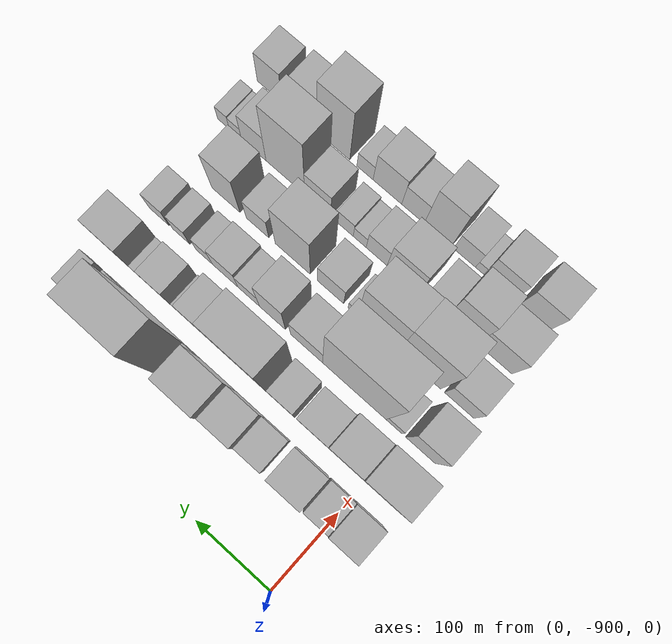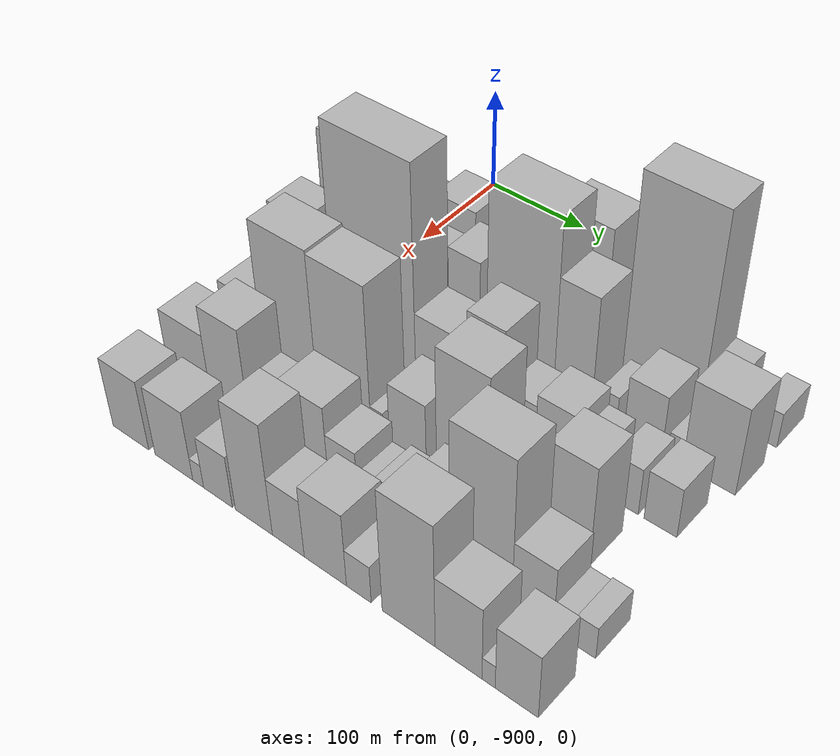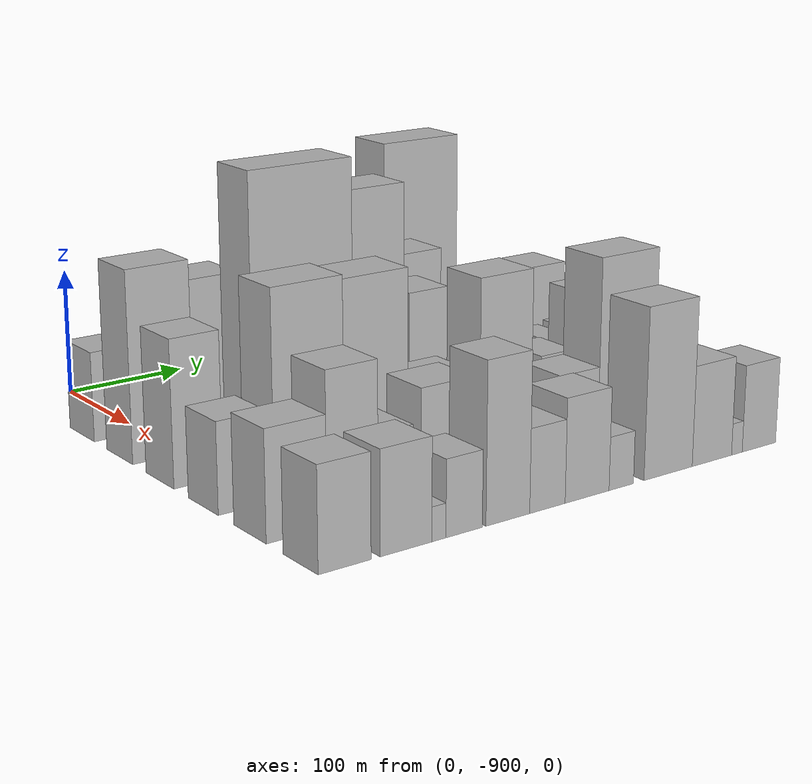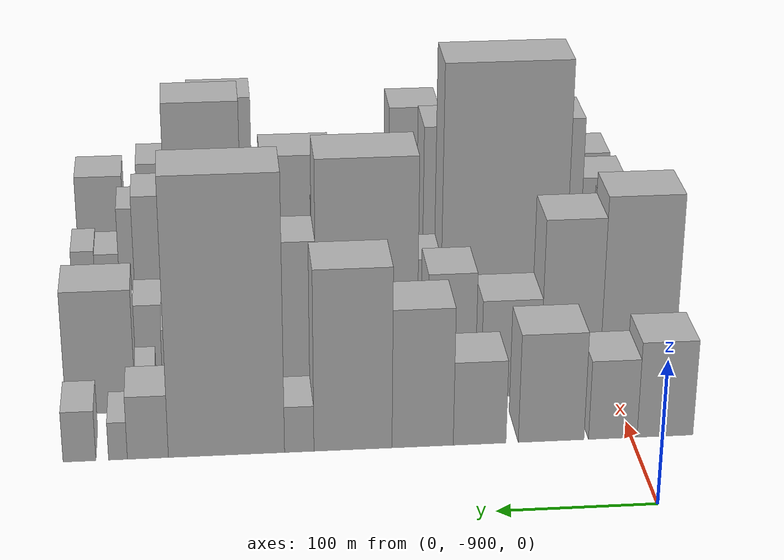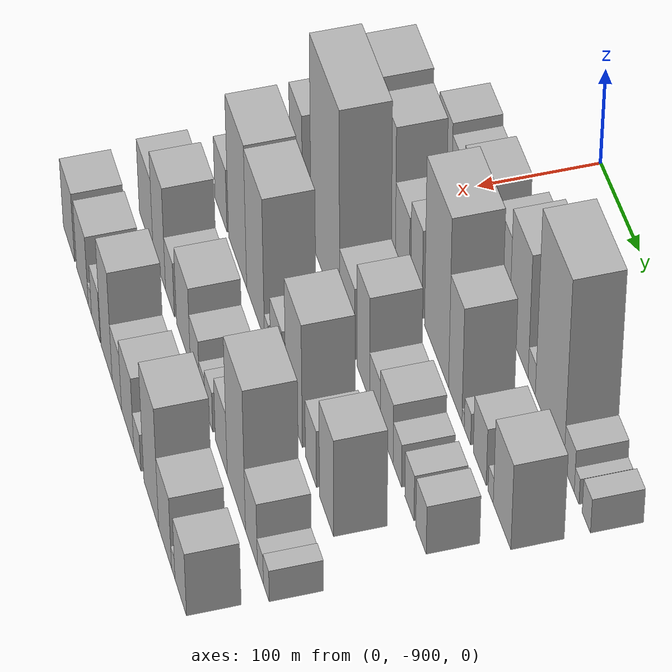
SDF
<sdf version="1.6">
 <world name="default">
  <model name="building_1">
   <static>1</static>
   <pose>100.0000 -921.6706 0 0.000000 0.000000 0.000000</pose>
   <link name="link">
    <pose>0 0 34.50 0 0 0</pose>
    <collision name="collision"><geometry><box><size>40.0000 36.6587 69.0000</size></box></geometry></collision>
    <visual name="visual">
     <cast_shadows>0</cast_shadows>
     <geometry><box><size>40.0000 36.6587 69.0000</size></box></geometry>
     <material>
      <script>
       <uri>model://HANNAS_wall/materials/scripts</uri>
       <uri>model://HANNAS_wall/materials/textures</uri>
       <name>vrc/HANNAS_wall</name>
      </script>
     </material>
    </visual>
   </link>
  </model>
  <model name="building_2">
   <static>1</static>
   <pose>100.0000 -887.4800 0 0.000000 0.000000 0.000000</pose>
   <link name="link">
    <pose>0 0 28.50 0 0 0</pose>
    <collision name="collision"><geometry><box><size>40.0000 31.7225 57.0000</size></box></geometry></collision>
    <visual name="visual">
     <cast_shadows>0</cast_shadows>
     <geometry><box><size>40.0000 31.7225 57.0000</size></box></geometry>
     <material>
      <script>
       <uri>model://HANNAS_wall/materials/scripts</uri>
       <uri>model://HANNAS_wall/materials/textures</uri>
       <name>vrc/HANNAS_wall</name>
      </script>
     </material>
    </visual>
   </link>
  </model>
  <model name="building_3">
   <static>1</static>
   <pose>100.0000 -847.2371 0 0.000000 0.000000 0.000000</pose>
   <link name="link">
    <pose>0 0 39.00 0 0 0</pose>
    <collision name="collision"><geometry><box><size>40.0000 42.7632 78.0000</size></box></geometry></collision>
    <visual name="visual">
     <cast_shadows>0</cast_shadows>
     <geometry><box><size>40.0000 42.7632 78.0000</size></box></geometry>
     <material>
      <script>
       <uri>model://HANNAS_wall/materials/scripts</uri>
       <uri>model://HANNAS_wall/materials/textures</uri>
       <name>vrc/HANNAS_wall</name>
      </script>
     </material>
    </visual>
   </link>
  </model>
  <model name="building_4">
   <static>1</static>
   <pose>100.0000 -800.7654 0 0.000000 0.000000 0.000000</pose>
   <link name="link">
    <pose>0 0 30.00 0 0 0</pose>
    <collision name="collision"><geometry><box><size>40.0000 34.1802 60.0000</size></box></geometry></collision>
    <visual name="visual">
     <cast_shadows>0</cast_shadows>
     <geometry><box><size>40.0000 34.1802 60.0000</size></box></geometry>
     <material>
      <script>
       <uri>model://HANNAS_wall/materials/scripts</uri>
       <uri>model://HANNAS_wall/materials/textures</uri>
       <name>vrc/HANNAS_wall</name>
      </script>
     </material>
    </visual>
   </link>
  </model>
  <model name="building_5">
   <static>1</static>
   <pose>100.0000 -763.9253 0 0.000000 0.000000 0.000000</pose>
   <link name="link">
    <pose>0 0 49.50 0 0 0</pose>
    <collision name="collision"><geometry><box><size>40.0000 39.5001 99.0000</size></box></geometry></collision>
    <visual name="visual">
     <cast_shadows>0</cast_shadows>
     <geometry><box><size>40.0000 39.5001 99.0000</size></box></geometry>
     <material>
      <script>
       <uri>model://HANNAS_wall/materials/scripts</uri>
       <uri>model://HANNAS_wall/materials/textures</uri>
       <name>vrc/HANNAS_wall</name>
      </script>
     </material>
    </visual>
   </link>
  </model>
  <model name="building_6">
   <static>1</static>
   <pose>100.0000 -719.1027 0 0.000000 0.000000 0.000000</pose>
   <link name="link">
    <pose>0 0 64.50 0 0 0</pose>
    <collision name="collision"><geometry><box><size>40.0000 50.1451 129.0000</size></box></geometry></collision>
    <visual name="visual">
     <cast_shadows>0</cast_shadows>
     <geometry><box><size>40.0000 50.1451 129.0000</size></box></geometry>
     <material>
      <script>
       <uri>model://HANNAS_wall/materials/scripts</uri>
       <uri>model://HANNAS_wall/materials/textures</uri>
       <name>vrc/HANNAS_wall</name>
      </script>
     </material>
    </visual>
   </link>
  </model>
  <model name="building_7">
   <static>1</static>
   <pose>100.0000 -684.6396 0 0.000000 0.000000 0.000000</pose>
   <link name="link">
    <pose>0 0 16.50 0 0 0</pose>
    <collision name="collision"><geometry><box><size>40.0000 18.7811 33.0000</size></box></geometry></collision>
    <visual name="visual">
     <cast_shadows>0</cast_shadows>
     <geometry><box><size>40.0000 18.7811 33.0000</size></box></geometry>
     <material>
      <script>
       <uri>model://HANNAS_wall/materials/scripts</uri>
       <uri>model://HANNAS_wall/materials/textures</uri>
       <name>vrc/HANNAS_wall</name>
      </script>
     </material>
    </visual>
   </link>
  </model>
  <model name="building_8">
   <static>1</static>
   <pose>100.0000 -638.2835 0 0.000000 0.000000 0.000000</pose>
   <link name="link">
    <pose>0 0 97.50 0 0 0</pose>
    <collision name="collision"><geometry><box><size>40.0000 73.9311 195.0000</size></box></geometry></collision>
    <visual name="visual">
     <cast_shadows>0</cast_shadows>
     <geometry><box><size>40.0000 73.9311 195.0000</size></box></geometry>
     <material>
      <script>
       <uri>model://HANNAS_wall/materials/scripts</uri>
       <uri>model://HANNAS_wall/materials/textures</uri>
       <name>vrc/HANNAS_wall</name>
      </script>
     </material>
    </visual>
   </link>
  </model>
  <model name="building_9">
   <static>1</static>
   <pose>100.0000 -588.3458 0 0.000000 0.000000 0.000000</pose>
   <link name="link">
    <pose>0 0 22.50 0 0 0</pose>
    <collision name="collision"><geometry><box><size>40.0000 25.9444 45.0000</size></box></geometry></collision>
    <visual name="visual">
     <cast_shadows>0</cast_shadows>
     <geometry><box><size>40.0000 25.9444 45.0000</size></box></geometry>
     <material>
      <script>
       <uri>model://HANNAS_wall/materials/scripts</uri>
       <uri>model://HANNAS_wall/materials/textures</uri>
       <name>vrc/HANNAS_wall</name>
      </script>
     </material>
    </visual>
   </link>
  </model>
  <model name="building_10">
   <static>1</static>
   <pose>100.0000 -569.4382 0 0.000000 0.000000 0.000000</pose>
   <link name="link">
    <pose>0 0 13.50 0 0 0</pose>
    <collision name="collision"><geometry><box><size>40.0000 11.8707 27.0000</size></box></geometry></collision>
    <visual name="visual">
     <cast_shadows>0</cast_shadows>
     <geometry><box><size>40.0000 11.8707 27.0000</size></box></geometry>
     <material>
      <script>
       <uri>model://HANNAS_wall/materials/scripts</uri>
       <uri>model://HANNAS_wall/materials/textures</uri>
       <name>vrc/HANNAS_wall</name>
      </script>
     </material>
    </visual>
   </link>
  </model>
  <model name="building_11">
   <static>1</static>
   <pose>100.0000 -545.1562 0 0.000000 0.000000 0.000000</pose>
   <link name="link">
    <pose>0 0 18.00 0 0 0</pose>
    <collision name="collision"><geometry><box><size>40.0000 20.6934 36.0000</size></box></geometry></collision>
    <visual name="visual">
     <cast_shadows>0</cast_shadows>
     <geometry><box><size>40.0000 20.6934 36.0000</size></box></geometry>
     <material>
      <script>
       <uri>model://HANNAS_wall/materials/scripts</uri>
       <uri>model://HANNAS_wall/materials/textures</uri>
       <name>vrc/HANNAS_wall</name>
      </script>
     </material>
    </visual>
   </link>
  </model>
  <model name="building_58">
   <static>1</static>
   <pose>160.0000 -914.7214 0 0.000000 0.000000 0.000000</pose>
   <link name="link">
    <pose>0 0 72.00 0 0 0</pose>
    <collision name="collision"><geometry><box><size>40.0000 50.5572 144.0000</size></box></geometry></collision>
    <visual name="visual">
     <cast_shadows>0</cast_shadows>
     <geometry><box><size>40.0000 50.5572 144.0000</size></box></geometry>
     <material>
      <script>
       <uri>model://HANNAS_wall/materials/scripts</uri>
       <uri>model://HANNAS_wall/materials/textures</uri>
       <name>vrc/HANNAS_wall</name>
      </script>
     </material>
    </visual>
   </link>
  </model>
  <model name="building_59">
   <static>1</static>
   <pose>160.0000 -869.4194 0 0.000000 0.000000 0.000000</pose>
   <link name="link">
    <pose>0 0 64.50 0 0 0</pose>
    <collision name="collision"><geometry><box><size>40.0000 40.0468 129.0000</size></box></geometry></collision>
    <visual name="visual">
     <cast_shadows>0</cast_shadows>
     <geometry><box><size>40.0000 40.0468 129.0000</size></box></geometry>
     <material>
      <script>
       <uri>model://HANNAS_wall/materials/scripts</uri>
       <uri>model://HANNAS_wall/materials/textures</uri>
       <name>vrc/HANNAS_wall</name>
      </script>
     </material>
    </visual>
   </link>
  </model>
  <model name="building_60">
   <static>1</static>
   <pose>160.0000 -829.5305 0 0.000000 0.000000 0.000000</pose>
   <link name="link">
    <pose>0 0 36.00 0 0 0</pose>
    <collision name="collision"><geometry><box><size>40.0000 39.7309 72.0000</size></box></geometry></collision>
    <visual name="visual">
     <cast_shadows>0</cast_shadows>
     <geometry><box><size>40.0000 39.7309 72.0000</size></box></geometry>
     <material>
      <script>
       <uri>model://HANNAS_wall/materials/scripts</uri>
       <uri>model://HANNAS_wall/materials/textures</uri>
       <name>vrc/HANNAS_wall</name>
      </script>
     </material>
    </visual>
   </link>
  </model>
  <model name="building_61">
   <static>1</static>
   <pose>160.0000 -789.5563 0 0.000000 0.000000 0.000000</pose>
   <link name="link">
    <pose>0 0 46.50 0 0 0</pose>
    <collision name="collision"><geometry><box><size>40.0000 32.2176 93.0000</size></box></geometry></collision>
    <visual name="visual">
     <cast_shadows>0</cast_shadows>
     <geometry><box><size>40.0000 32.2176 93.0000</size></box></geometry>
     <material>
      <script>
       <uri>model://HANNAS_wall/materials/scripts</uri>
       <uri>model://HANNAS_wall/materials/textures</uri>
       <name>vrc/HANNAS_wall</name>
      </script>
     </material>
    </visual>
   </link>
  </model>
  <model name="building_62">
   <static>1</static>
   <pose>160.0000 -732.9890 0 0.000000 0.000000 0.000000</pose>
   <link name="link">
    <pose>0 0 88.50 0 0 0</pose>
    <collision name="collision"><geometry><box><size>40.0000 66.9169 177.0000</size></box></geometry></collision>
    <visual name="visual">
     <cast_shadows>0</cast_shadows>
     <geometry><box><size>40.0000 66.9169 177.0000</size></box></geometry>
     <material>
      <script>
       <uri>model://HANNAS_wall/materials/scripts</uri>
       <uri>model://HANNAS_wall/materials/textures</uri>
       <name>vrc/HANNAS_wall</name>
      </script>
     </material>
    </visual>
   </link>
  </model>
  <model name="building_63">
   <static>1</static>
   <pose>160.0000 -681.4490 0 0.000000 0.000000 0.000000</pose>
   <link name="link">
    <pose>0 0 60.00 0 0 0</pose>
    <collision name="collision"><geometry><box><size>40.0000 36.1633 120.0000</size></box></geometry></collision>
    <visual name="visual">
     <cast_shadows>0</cast_shadows>
     <geometry><box><size>40.0000 36.1633 120.0000</size></box></geometry>
     <material>
      <script>
       <uri>model://HANNAS_wall/materials/scripts</uri>
       <uri>model://HANNAS_wall/materials/textures</uri>
       <name>vrc/HANNAS_wall</name>
      </script>
     </material>
    </visual>
   </link>
  </model>
  <model name="building_64">
   <static>1</static>
   <pose>160.0000 -660.2028 0 0.000000 0.000000 0.000000</pose>
   <link name="link">
    <pose>0 0 7.50 0 0 0</pose>
    <collision name="collision"><geometry><box><size>40.0000 6.3290 15.0000</size></box></geometry></collision>
    <visual name="visual">
     <cast_shadows>0</cast_shadows>
     <geometry><box><size>40.0000 6.3290 15.0000</size></box></geometry>
     <material>
      <script>
       <uri>model://HANNAS_wall/materials/scripts</uri>
       <uri>model://HANNAS_wall/materials/textures</uri>
       <name>vrc/HANNAS_wall</name>
      </script>
     </material>
    </visual>
   </link>
  </model>
  <model name="building_65">
   <static>1</static>
   <pose>160.0000 -648.4625 0 0.000000 0.000000 0.000000</pose>
   <link name="link">
    <pose>0 0 16.50 0 0 0</pose>
    <collision name="collision"><geometry><box><size>40.0000 17.1516 33.0000</size></box></geometry></collision>
    <visual name="visual">
     <cast_shadows>0</cast_shadows>
     <geometry><box><size>40.0000 17.1516 33.0000</size></box></geometry>
     <material>
      <script>
       <uri>model://HANNAS_wall/materials/scripts</uri>
       <uri>model://HANNAS_wall/materials/textures</uri>
       <name>vrc/HANNAS_wall</name>
      </script>
     </material>
    </visual>
   </link>
  </model>
  <model name="building_66">
   <static>1</static>
   <pose>160.0000 -615.7064 0 0.000000 0.000000 0.000000</pose>
   <link name="link">
    <pose>0 0 30.00 0 0 0</pose>
    <collision name="collision"><geometry><box><size>40.0000 34.3606 60.0000</size></box></geometry></collision>
    <visual name="visual">
     <cast_shadows>0</cast_shadows>
     <geometry><box><size>40.0000 34.3606 60.0000</size></box></geometry>
     <material>
      <script>
       <uri>model://HANNAS_wall/materials/scripts</uri>
       <uri>model://HANNAS_wall/materials/textures</uri>
       <name>vrc/HANNAS_wall</name>
      </script>
     </material>
    </visual>
   </link>
  </model>
  <model name="building_67">
   <static>1</static>
   <pose>160.0000 -586.7842 0 0.000000 0.000000 0.000000</pose>
   <link name="link">
    <pose>0 0 13.50 0 0 0</pose>
    <collision name="collision"><geometry><box><size>40.0000 13.4837 27.0000</size></box></geometry></collision>
    <visual name="visual">
     <cast_shadows>0</cast_shadows>
     <geometry><box><size>40.0000 13.4837 27.0000</size></box></geometry>
     <material>
      <script>
       <uri>model://HANNAS_wall/materials/scripts</uri>
       <uri>model://HANNAS_wall/materials/textures</uri>
       <name>vrc/HANNAS_wall</name>
      </script>
     </material>
    </visual>
   </link>
  </model>
  <model name="building_68">
   <static>1</static>
   <pose>160.0000 -557.1740 0 0.000000 0.000000 0.000000</pose>
   <link name="link">
    <pose>0 0 45.00 0 0 0</pose>
    <collision name="collision"><geometry><box><size>40.0000 45.7366 90.0000</size></box></geometry></collision>
    <visual name="visual">
     <cast_shadows>0</cast_shadows>
     <geometry><box><size>40.0000 45.7366 90.0000</size></box></geometry>
     <material>
      <script>
       <uri>model://HANNAS_wall/materials/scripts</uri>
       <uri>model://HANNAS_wall/materials/textures</uri>
       <name>vrc/HANNAS_wall</name>
      </script>
     </material>
    </visual>
   </link>
  </model>
  <model name="building_108">
   <static>1</static>
   <pose>220.0000 -920.4741 0 0.000000 0.000000 0.000000</pose>
   <link name="link">
    <pose>0 0 54.00 0 0 0</pose>
    <collision name="collision"><geometry><box><size>40.0000 39.0517 108.0000</size></box></geometry></collision>
    <visual name="visual">
     <cast_shadows>0</cast_shadows>
     <geometry><box><size>40.0000 39.0517 108.0000</size></box></geometry>
     <material>
      <script>
       <uri>model://HANNAS_wall/materials/scripts</uri>
       <uri>model://HANNAS_wall/materials/textures</uri>
       <name>vrc/HANNAS_wall</name>
      </script>
     </material>
    </visual>
   </link>
  </model>
  <model name="building_109">
   <static>1</static>
   <pose>220.0000 -885.4482 0 0.000000 0.000000 0.000000</pose>
   <link name="link">
    <pose>0 0 18.00 0 0 0</pose>
    <collision name="collision"><geometry><box><size>40.0000 21.0002 36.0000</size></box></geometry></collision>
    <visual name="visual">
     <cast_shadows>0</cast_shadows>
     <geometry><box><size>40.0000 21.0002 36.0000</size></box></geometry>
     <material>
      <script>
       <uri>model://HANNAS_wall/materials/scripts</uri>
       <uri>model://HANNAS_wall/materials/textures</uri>
       <name>vrc/HANNAS_wall</name>
      </script>
     </material>
    </visual>
   </link>
  </model>
  <model name="building_110">
   <static>1</static>
   <pose>220.0000 -832.1061 0 0.000000 0.000000 0.000000</pose>
   <link name="link">
    <pose>0 0 108.00 0 0 0</pose>
    <collision name="collision"><geometry><box><size>40.0000 85.6838 216.0000</size></box></geometry></collision>
    <visual name="visual">
     <cast_shadows>0</cast_shadows>
     <geometry><box><size>40.0000 85.6838 216.0000</size></box></geometry>
     <material>
      <script>
       <uri>model://HANNAS_wall/materials/scripts</uri>
       <uri>model://HANNAS_wall/materials/textures</uri>
       <name>vrc/HANNAS_wall</name>
      </script>
     </material>
    </visual>
   </link>
  </model>
  <model name="building_111">
   <static>1</static>
   <pose>220.0000 -767.3080 0 0.000000 0.000000 0.000000</pose>
   <link name="link">
    <pose>0 0 37.50 0 0 0</pose>
    <collision name="collision"><geometry><box><size>40.0000 43.9125 75.0000</size></box></geometry></collision>
    <visual name="visual">
     <cast_shadows>0</cast_shadows>
     <geometry><box><size>40.0000 43.9125 75.0000</size></box></geometry>
     <material>
      <script>
       <uri>model://HANNAS_wall/materials/scripts</uri>
       <uri>model://HANNAS_wall/materials/textures</uri>
       <name>vrc/HANNAS_wall</name>
      </script>
     </material>
    </visual>
   </link>
  </model>
  <model name="building_112">
   <static>1</static>
   <pose>220.0000 -720.4539 0 0.000000 0.000000 0.000000</pose>
   <link name="link">
    <pose>0 0 54.00 0 0 0</pose>
    <collision name="collision"><geometry><box><size>40.0000 35.7957 108.0000</size></box></geometry></collision>
    <visual name="visual">
     <cast_shadows>0</cast_shadows>
     <geometry><box><size>40.0000 35.7957 108.0000</size></box></geometry>
     <material>
      <script>
       <uri>model://HANNAS_wall/materials/scripts</uri>
       <uri>model://HANNAS_wall/materials/textures</uri>
       <name>vrc/HANNAS_wall</name>
      </script>
     </material>
    </visual>
   </link>
  </model>
  <model name="building_113">
   <static>1</static>
   <pose>220.0000 -687.5004 0 0.000000 0.000000 0.000000</pose>
   <link name="link">
    <pose>0 0 25.50 0 0 0</pose>
    <collision name="collision"><geometry><box><size>40.0000 30.1112 51.0000</size></box></geometry></collision>
    <visual name="visual">
     <cast_shadows>0</cast_shadows>
     <geometry><box><size>40.0000 30.1112 51.0000</size></box></geometry>
     <material>
      <script>
       <uri>model://HANNAS_wall/materials/scripts</uri>
       <uri>model://HANNAS_wall/materials/textures</uri>
       <name>vrc/HANNAS_wall</name>
      </script>
     </material>
    </visual>
   </link>
  </model>
  <model name="building_114">
   <static>1</static>
   <pose>220.0000 -654.3811 0 0.000000 0.000000 0.000000</pose>
   <link name="link">
    <pose>0 0 31.50 0 0 0</pose>
    <collision name="collision"><geometry><box><size>40.0000 36.1275 63.0000</size></box></geometry></collision>
    <visual name="visual">
     <cast_shadows>0</cast_shadows>
     <geometry><box><size>40.0000 36.1275 63.0000</size></box></geometry>
     <material>
      <script>
       <uri>model://HANNAS_wall/materials/scripts</uri>
       <uri>model://HANNAS_wall/materials/textures</uri>
       <name>vrc/HANNAS_wall</name>
      </script>
     </material>
    </visual>
   </link>
  </model>
  <model name="building_115">
   <static>1</static>
   <pose>220.0000 -624.5632 0 0.000000 0.000000 0.000000</pose>
   <link name="link">
    <pose>0 0 22.50 0 0 0</pose>
    <collision name="collision"><geometry><box><size>40.0000 23.5081 45.0000</size></box></geometry></collision>
    <visual name="visual">
     <cast_shadows>0</cast_shadows>
     <geometry><box><size>40.0000 23.5081 45.0000</size></box></geometry>
     <material>
      <script>
       <uri>model://HANNAS_wall/materials/scripts</uri>
       <uri>model://HANNAS_wall/materials/textures</uri>
       <name>vrc/HANNAS_wall</name>
      </script>
     </material>
    </visual>
   </link>
  </model>
  <model name="building_116">
   <static>1</static>
   <pose>220.0000 -591.4256 0 0.000000 0.000000 0.000000</pose>
   <link name="link">
    <pose>0 0 24.00 0 0 0</pose>
    <collision name="collision"><geometry><box><size>40.0000 24.7671 48.0000</size></box></geometry></collision>
    <visual name="visual">
     <cast_shadows>0</cast_shadows>
     <geometry><box><size>40.0000 24.7671 48.0000</size></box></geometry>
     <material>
      <script>
       <uri>model://HANNAS_wall/materials/scripts</uri>
       <uri>model://HANNAS_wall/materials/textures</uri>
       <name>vrc/HANNAS_wall</name>
      </script>
     </material>
    </visual>
   </link>
  </model>
  <model name="building_117">
   <static>1</static>
   <pose>220.0000 -559.9517 0 0.000000 0.000000 0.000000</pose>
   <link name="link">
    <pose>0 0 25.50 0 0 0</pose>
    <collision name="collision"><geometry><box><size>40.0000 28.1807 51.0000</size></box></geometry></collision>
    <visual name="visual">
     <cast_shadows>0</cast_shadows>
     <geometry><box><size>40.0000 28.1807 51.0000</size></box></geometry>
     <material>
      <script>
       <uri>model://HANNAS_wall/materials/scripts</uri>
       <uri>model://HANNAS_wall/materials/textures</uri>
       <name>vrc/HANNAS_wall</name>
      </script>
     </material>
    </visual>
   </link>
  </model>
  <model name="building_160">
   <static>1</static>
   <pose>280.0000 -920.5099 0 0.000000 0.000000 0.000000</pose>
   <link name="link">
    <pose>0 0 33.00 0 0 0</pose>
    <collision name="collision"><geometry><box><size>40.0000 38.9801 66.0000</size></box></geometry></collision>
    <visual name="visual">
     <cast_shadows>0</cast_shadows>
     <geometry><box><size>40.0000 38.9801 66.0000</size></box></geometry>
     <material>
      <script>
       <uri>model://HANNAS_wall/materials/scripts</uri>
       <uri>model://HANNAS_wall/materials/textures</uri>
       <name>vrc/HANNAS_wall</name>
      </script>
     </material>
    </visual>
   </link>
  </model>
  <model name="building_161">
   <static>1</static>
   <pose>280.0000 -867.2733 0 0.000000 0.000000 0.000000</pose>
   <link name="link">
    <pose>0 0 75.00 0 0 0</pose>
    <collision name="collision"><geometry><box><size>40.0000 57.4932 150.0000</size></box></geometry></collision>
    <visual name="visual">
     <cast_shadows>0</cast_shadows>
     <geometry><box><size>40.0000 57.4932 150.0000</size></box></geometry>
     <material>
      <script>
       <uri>model://HANNAS_wall/materials/scripts</uri>
       <uri>model://HANNAS_wall/materials/textures</uri>
       <name>vrc/HANNAS_wall</name>
      </script>
     </material>
    </visual>
   </link>
  </model>
  <model name="building_162">
   <static>1</static>
   <pose>280.0000 -810.8977 0 0.000000 0.000000 0.000000</pose>
   <link name="link">
    <pose>0 0 73.50 0 0 0</pose>
    <collision name="collision"><geometry><box><size>40.0000 55.2579 147.0000</size></box></geometry></collision>
    <visual name="visual">
     <cast_shadows>0</cast_shadows>
     <geometry><box><size>40.0000 55.2579 147.0000</size></box></geometry>
     <material>
      <script>
       <uri>model://HANNAS_wall/materials/scripts</uri>
       <uri>model://HANNAS_wall/materials/textures</uri>
       <name>vrc/HANNAS_wall</name>
      </script>
     </material>
    </visual>
   </link>
  </model>
  <model name="building_163">
   <static>1</static>
   <pose>280.0000 -776.9638 0 0.000000 0.000000 0.000000</pose>
   <link name="link">
    <pose>0 0 13.50 0 0 0</pose>
    <collision name="collision"><geometry><box><size>40.0000 12.6099 27.0000</size></box></geometry></collision>
    <visual name="visual">
     <cast_shadows>0</cast_shadows>
     <geometry><box><size>40.0000 12.6099 27.0000</size></box></geometry>
     <material>
      <script>
       <uri>model://HANNAS_wall/materials/scripts</uri>
       <uri>model://HANNAS_wall/materials/textures</uri>
       <name>vrc/HANNAS_wall</name>
      </script>
     </material>
    </visual>
   </link>
  </model>
  <model name="building_164">
   <static>1</static>
   <pose>280.0000 -746.5113 0 0.000000 0.000000 0.000000</pose>
   <link name="link">
    <pose>0 0 31.50 0 0 0</pose>
    <collision name="collision"><geometry><box><size>40.0000 36.2949 63.0000</size></box></geometry></collision>
    <visual name="visual">
     <cast_shadows>0</cast_shadows>
     <geometry><box><size>40.0000 36.2949 63.0000</size></box></geometry>
     <material>
      <script>
       <uri>model://HANNAS_wall/materials/scripts</uri>
       <uri>model://HANNAS_wall/materials/textures</uri>
       <name>vrc/HANNAS_wall</name>
      </script>
     </material>
    </visual>
   </link>
  </model>
  <model name="building_165">
   <static>1</static>
   <pose>280.0000 -693.8516 0 0.000000 0.000000 0.000000</pose>
   <link name="link">
    <pose>0 0 64.50 0 0 0</pose>
    <collision name="collision"><geometry><box><size>40.0000 49.0245 129.0000</size></box></geometry></collision>
    <visual name="visual">
     <cast_shadows>0</cast_shadows>
     <geometry><box><size>40.0000 49.0245 129.0000</size></box></geometry>
     <material>
      <script>
       <uri>model://HANNAS_wall/materials/scripts</uri>
       <uri>model://HANNAS_wall/materials/textures</uri>
       <name>vrc/HANNAS_wall</name>
      </script>
     </material>
    </visual>
   </link>
  </model>
  <model name="building_166">
   <static>1</static>
   <pose>280.0000 -644.4137 0 0.000000 0.000000 0.000000</pose>
   <link name="link">
    <pose>0 0 30.00 0 0 0</pose>
    <collision name="collision"><geometry><box><size>40.0000 31.8513 60.0000</size></box></geometry></collision>
    <visual name="visual">
     <cast_shadows>0</cast_shadows>
     <geometry><box><size>40.0000 31.8513 60.0000</size></box></geometry>
     <material>
      <script>
       <uri>model://HANNAS_wall/materials/scripts</uri>
       <uri>model://HANNAS_wall/materials/textures</uri>
       <name>vrc/HANNAS_wall</name>
      </script>
     </material>
    </visual>
   </link>
  </model>
  <model name="building_167">
   <static>1</static>
   <pose>280.0000 -599.3517 0 0.000000 0.000000 0.000000</pose>
   <link name="link">
    <pose>0 0 51.00 0 0 0</pose>
    <collision name="collision"><geometry><box><size>40.0000 40.2727 102.0000</size></box></geometry></collision>
    <visual name="visual">
     <cast_shadows>0</cast_shadows>
     <geometry><box><size>40.0000 40.2727 102.0000</size></box></geometry>
     <material>
      <script>
       <uri>model://HANNAS_wall/materials/scripts</uri>
       <uri>model://HANNAS_wall/materials/textures</uri>
       <name>vrc/HANNAS_wall</name>
      </script>
     </material>
    </visual>
   </link>
  </model>
  <model name="building_214">
   <static>1</static>
   <pose>340.0000 -916.6339 0 0.000000 0.000000 0.000000</pose>
   <link name="link">
    <pose>0 0 39.00 0 0 0</pose>
    <collision name="collision"><geometry><box><size>40.0000 46.7323 78.0000</size></box></geometry></collision>
    <visual name="visual">
     <cast_shadows>0</cast_shadows>
     <geometry><box><size>40.0000 46.7323 78.0000</size></box></geometry>
     <material>
      <script>
       <uri>model://HANNAS_wall/materials/scripts</uri>
       <uri>model://HANNAS_wall/materials/textures</uri>
       <name>vrc/HANNAS_wall</name>
      </script>
     </material>
    </visual>
   </link>
  </model>
  <model name="building_215">
   <static>1</static>
   <pose>340.0000 -872.7170 0 0.000000 0.000000 0.000000</pose>
   <link name="link">
    <pose>0 0 54.00 0 0 0</pose>
    <collision name="collision"><geometry><box><size>40.0000 41.1014 108.0000</size></box></geometry></collision>
    <visual name="visual">
     <cast_shadows>0</cast_shadows>
     <geometry><box><size>40.0000 41.1014 108.0000</size></box></geometry>
     <material>
      <script>
       <uri>model://HANNAS_wall/materials/scripts</uri>
       <uri>model://HANNAS_wall/materials/textures</uri>
       <name>vrc/HANNAS_wall</name>
      </script>
     </material>
    </visual>
   </link>
  </model>
  <model name="building_216">
   <static>1</static>
   <pose>340.0000 -837.7462 0 0.000000 0.000000 0.000000</pose>
   <link name="link">
    <pose>0 0 28.50 0 0 0</pose>
    <collision name="collision"><geometry><box><size>40.0000 28.8401 57.0000</size></box></geometry></collision>
    <visual name="visual">
     <cast_shadows>0</cast_shadows>
     <geometry><box><size>40.0000 28.8401 57.0000</size></box></geometry>
     <material>
      <script>
       <uri>model://HANNAS_wall/materials/scripts</uri>
       <uri>model://HANNAS_wall/materials/textures</uri>
       <name>vrc/HANNAS_wall</name>
      </script>
     </material>
    </visual>
   </link>
  </model>
  <model name="building_217">
   <static>1</static>
   <pose>340.0000 -794.0074 0 0.000000 0.000000 0.000000</pose>
   <link name="link">
    <pose>0 0 40.50 0 0 0</pose>
    <collision name="collision"><geometry><box><size>40.0000 44.6375 81.0000</size></box></geometry></collision>
    <visual name="visual">
     <cast_shadows>0</cast_shadows>
     <geometry><box><size>40.0000 44.6375 81.0000</size></box></geometry>
     <material>
      <script>
       <uri>model://HANNAS_wall/materials/scripts</uri>
       <uri>model://HANNAS_wall/materials/textures</uri>
       <name>vrc/HANNAS_wall</name>
      </script>
     </material>
    </visual>
   </link>
  </model>
  <model name="building_218">
   <static>1</static>
   <pose>340.0000 -757.2510 0 0.000000 0.000000 0.000000</pose>
   <link name="link">
    <pose>0 0 27.00 0 0 0</pose>
    <collision name="collision"><geometry><box><size>40.0000 28.8752 54.0000</size></box></geometry></collision>
    <visual name="visual">
     <cast_shadows>0</cast_shadows>
     <geometry><box><size>40.0000 28.8752 54.0000</size></box></geometry>
     <material>
      <script>
       <uri>model://HANNAS_wall/materials/scripts</uri>
       <uri>model://HANNAS_wall/materials/textures</uri>
       <name>vrc/HANNAS_wall</name>
      </script>
     </material>
    </visual>
   </link>
  </model>
  <model name="building_219">
   <static>1</static>
   <pose>340.0000 -733.7903 0 0.000000 0.000000 0.000000</pose>
   <link name="link">
    <pose>0 0 16.50 0 0 0</pose>
    <collision name="collision"><geometry><box><size>40.0000 18.0461 33.0000</size></box></geometry></collision>
    <visual name="visual">
     <cast_shadows>0</cast_shadows>
     <geometry><box><size>40.0000 18.0461 33.0000</size></box></geometry>
     <material>
      <script>
       <uri>model://HANNAS_wall/materials/scripts</uri>
       <uri>model://HANNAS_wall/materials/textures</uri>
       <name>vrc/HANNAS_wall</name>
      </script>
     </material>
    </visual>
   </link>
  </model>
  <model name="building_220">
   <static>1</static>
   <pose>340.0000 -712.9154 0 0.000000 0.000000 0.000000</pose>
   <link name="link">
    <pose>0 0 21.00 0 0 0</pose>
    <collision name="collision"><geometry><box><size>40.0000 23.7037 42.0000</size></box></geometry></collision>
    <visual name="visual">
     <cast_shadows>0</cast_shadows>
     <geometry><box><size>40.0000 23.7037 42.0000</size></box></geometry>
     <material>
      <script>
       <uri>model://HANNAS_wall/materials/scripts</uri>
       <uri>model://HANNAS_wall/materials/textures</uri>
       <name>vrc/HANNAS_wall</name>
      </script>
     </material>
    </visual>
   </link>
  </model>
  <model name="building_221">
   <static>1</static>
   <pose>340.0000 -674.8121 0 0.000000 0.000000 0.000000</pose>
   <link name="link">
    <pose>0 0 33.00 0 0 0</pose>
    <collision name="collision"><geometry><box><size>40.0000 36.5029 66.0000</size></box></geometry></collision>
    <visual name="visual">
     <cast_shadows>0</cast_shadows>
     <geometry><box><size>40.0000 36.5029 66.0000</size></box></geometry>
     <material>
      <script>
       <uri>model://HANNAS_wall/materials/scripts</uri>
       <uri>model://HANNAS_wall/materials/textures</uri>
       <name>vrc/HANNAS_wall</name>
      </script>
     </material>
    </visual>
   </link>
  </model>
  <model name="building_222">
   <static>1</static>
   <pose>340.0000 -629.0275 0 0.000000 0.000000 0.000000</pose>
   <link name="link">
    <pose>0 0 73.50 0 0 0</pose>
    <collision name="collision"><geometry><box><size>40.0000 55.0664 147.0000</size></box></geometry></collision>
    <visual name="visual">
     <cast_shadows>0</cast_shadows>
     <geometry><box><size>40.0000 55.0664 147.0000</size></box></geometry>
     <material>
      <script>
       <uri>model://HANNAS_wall/materials/scripts</uri>
       <uri>model://HANNAS_wall/materials/textures</uri>
       <name>vrc/HANNAS_wall</name>
      </script>
     </material>
    </visual>
   </link>
  </model>
  <model name="building_223">
   <static>1</static>
   <pose>340.0000 -583.8113 0 0.000000 0.000000 0.000000</pose>
   <link name="link">
    <pose>0 0 33.00 0 0 0</pose>
    <collision name="collision"><geometry><box><size>40.0000 35.3661 66.0000</size></box></geometry></collision>
    <visual name="visual">
     <cast_shadows>0</cast_shadows>
     <geometry><box><size>40.0000 35.3661 66.0000</size></box></geometry>
     <material>
      <script>
       <uri>model://HANNAS_wall/materials/scripts</uri>
       <uri>model://HANNAS_wall/materials/textures</uri>
       <name>vrc/HANNAS_wall</name>
      </script>
     </material>
    </visual>
   </link>
  </model>
  <model name="building_224">
   <static>1</static>
   <pose>340.0000 -557.2260 0 0.000000 0.000000 0.000000</pose>
   <link name="link">
    <pose>0 0 15.00 0 0 0</pose>
    <collision name="collision"><geometry><box><size>40.0000 17.8044 30.0000</size></box></geometry></collision>
    <visual name="visual">
     <cast_shadows>0</cast_shadows>
     <geometry><box><size>40.0000 17.8044 30.0000</size></box></geometry>
     <material>
      <script>
       <uri>model://HANNAS_wall/materials/scripts</uri>
       <uri>model://HANNAS_wall/materials/textures</uri>
       <name>vrc/HANNAS_wall</name>
      </script>
     </material>
    </visual>
   </link>
  </model>
  <model name="building_225">
   <static>1</static>
   <pose>340.0000 -539.8643 0 0.000000 0.000000 0.000000</pose>
   <link name="link">
    <pose>0 0 16.50 0 0 0</pose>
    <collision name="collision"><geometry><box><size>40.0000 16.9191 33.0000</size></box></geometry></collision>
    <visual name="visual">
     <cast_shadows>0</cast_shadows>
     <geometry><box><size>40.0000 16.9191 33.0000</size></box></geometry>
     <material>
      <script>
       <uri>model://HANNAS_wall/materials/scripts</uri>
       <uri>model://HANNAS_wall/materials/textures</uri>
       <name>vrc/HANNAS_wall</name>
      </script>
     </material>
    </visual>
   </link>
  </model>
  <model name="building_265">
   <static>1</static>
   <pose>400.0000 -920.0737 0 0.000000 0.000000 0.000000</pose>
   <link name="link">
    <pose>0 0 36.00 0 0 0</pose>
    <collision name="collision"><geometry><box><size>40.0000 39.8527 72.0000</size></box></geometry></collision>
    <visual name="visual">
     <cast_shadows>0</cast_shadows>
     <geometry><box><size>40.0000 39.8527 72.0000</size></box></geometry>
     <material>
      <script>
       <uri>model://HANNAS_wall/materials/scripts</uri>
       <uri>model://HANNAS_wall/materials/textures</uri>
       <name>vrc/HANNAS_wall</name>
      </script>
     </material>
    </visual>
   </link>
  </model>
  <model name="building_266">
   <static>1</static>
   <pose>400.0000 -872.8094 0 0.000000 0.000000 0.000000</pose>
   <link name="link">
    <pose>0 0 36.00 0 0 0</pose>
    <collision name="collision"><geometry><box><size>40.0000 40.6758 72.0000</size></box></geometry></collision>
    <visual name="visual">
     <cast_shadows>0</cast_shadows>
     <geometry><box><size>40.0000 40.6758 72.0000</size></box></geometry>
     <material>
      <script>
       <uri>model://HANNAS_wall/materials/scripts</uri>
       <uri>model://HANNAS_wall/materials/textures</uri>
       <name>vrc/HANNAS_wall</name>
      </script>
     </material>
    </visual>
   </link>
  </model>
  <model name="building_267">
   <static>1</static>
   <pose>400.0000 -846.7987 0 0.000000 0.000000 0.000000</pose>
   <link name="link">
    <pose>0 0 12.00 0 0 0</pose>
    <collision name="collision"><geometry><box><size>40.0000 11.3458 24.0000</size></box></geometry></collision>
    <visual name="visual">
     <cast_shadows>0</cast_shadows>
     <geometry><box><size>40.0000 11.3458 24.0000</size></box></geometry>
     <material>
      <script>
       <uri>model://HANNAS_wall/materials/scripts</uri>
       <uri>model://HANNAS_wall/materials/textures</uri>
       <name>vrc/HANNAS_wall</name>
      </script>
     </material>
    </visual>
   </link>
  </model>
  <model name="building_268">
   <static>1</static>
   <pose>400.0000 -826.1482 0 0.000000 0.000000 0.000000</pose>
   <link name="link">
    <pose>0 0 27.00 0 0 0</pose>
    <collision name="collision"><geometry><box><size>40.0000 29.9552 54.0000</size></box></geometry></collision>
    <visual name="visual">
     <cast_shadows>0</cast_shadows>
     <geometry><box><size>40.0000 29.9552 54.0000</size></box></geometry>
     <material>
      <script>
       <uri>model://HANNAS_wall/materials/scripts</uri>
       <uri>model://HANNAS_wall/materials/textures</uri>
       <name>vrc/HANNAS_wall</name>
      </script>
     </material>
    </visual>
   </link>
  </model>
  <model name="building_269">
   <static>1</static>
   <pose>400.0000 -789.5044 0 0.000000 0.000000 0.000000</pose>
   <link name="link">
    <pose>0 0 57.00 0 0 0</pose>
    <collision name="collision"><geometry><box><size>40.0000 37.3324 114.0000</size></box></geometry></collision>
    <visual name="visual">
     <cast_shadows>0</cast_shadows>
     <geometry><box><size>40.0000 37.3324 114.0000</size></box></geometry>
     <material>
      <script>
       <uri>model://HANNAS_wall/materials/scripts</uri>
       <uri>model://HANNAS_wall/materials/textures</uri>
       <name>vrc/HANNAS_wall</name>
      </script>
     </material>
    </visual>
   </link>
  </model>
  <model name="building_270">
   <static>1</static>
   <pose>400.0000 -755.2452 0 0.000000 0.000000 0.000000</pose>
   <link name="link">
    <pose>0 0 30.00 0 0 0</pose>
    <collision name="collision"><geometry><box><size>40.0000 31.1859 60.0000</size></box></geometry></collision>
    <visual name="visual">
     <cast_shadows>0</cast_shadows>
     <geometry><box><size>40.0000 31.1859 60.0000</size></box></geometry>
     <material>
      <script>
       <uri>model://HANNAS_wall/materials/scripts</uri>
       <uri>model://HANNAS_wall/materials/textures</uri>
       <name>vrc/HANNAS_wall</name>
      </script>
     </material>
    </visual>
   </link>
  </model>
  <model name="building_271">
   <static>1</static>
   <pose>400.0000 -719.6765 0 0.000000 0.000000 0.000000</pose>
   <link name="link">
    <pose>0 0 37.50 0 0 0</pose>
    <collision name="collision"><geometry><box><size>40.0000 39.9515 75.0000</size></box></geometry></collision>
    <visual name="visual">
     <cast_shadows>0</cast_shadows>
     <geometry><box><size>40.0000 39.9515 75.0000</size></box></geometry>
     <material>
      <script>
       <uri>model://HANNAS_wall/materials/scripts</uri>
       <uri>model://HANNAS_wall/materials/textures</uri>
       <name>vrc/HANNAS_wall</name>
      </script>
     </material>
    </visual>
   </link>
  </model>
  <model name="building_272">
   <static>1</static>
   <pose>400.0000 -688.2707 0 0.000000 0.000000 0.000000</pose>
   <link name="link">
    <pose>0 0 19.50 0 0 0</pose>
    <collision name="collision"><geometry><box><size>40.0000 22.8602 39.0000</size></box></geometry></collision>
    <visual name="visual">
     <cast_shadows>0</cast_shadows>
     <geometry><box><size>40.0000 22.8602 39.0000</size></box></geometry>
     <material>
      <script>
       <uri>model://HANNAS_wall/materials/scripts</uri>
       <uri>model://HANNAS_wall/materials/textures</uri>
       <name>vrc/HANNAS_wall</name>
      </script>
     </material>
    </visual>
   </link>
  </model>
  <model name="building_273">
   <static>1</static>
   <pose>400.0000 -643.3521 0 0.000000 0.000000 0.000000</pose>
   <link name="link">
    <pose>0 0 63.00 0 0 0</pose>
    <collision name="collision"><geometry><box><size>40.0000 46.9770 126.0000</size></box></geometry></collision>
    <visual name="visual">
     <cast_shadows>0</cast_shadows>
     <geometry><box><size>40.0000 46.9770 126.0000</size></box></geometry>
     <material>
      <script>
       <uri>model://HANNAS_wall/materials/scripts</uri>
       <uri>model://HANNAS_wall/materials/textures</uri>
       <name>vrc/HANNAS_wall</name>
      </script>
     </material>
    </visual>
   </link>
  </model>
  <model name="building_274">
   <static>1</static>
   <pose>400.0000 -599.9418 0 0.000000 0.000000 0.000000</pose>
   <link name="link">
    <pose>0 0 37.50 0 0 0</pose>
    <collision name="collision"><geometry><box><size>40.0000 39.8436 75.0000</size></box></geometry></collision>
    <visual name="visual">
     <cast_shadows>0</cast_shadows>
     <geometry><box><size>40.0000 39.8436 75.0000</size></box></geometry>
     <material>
      <script>
       <uri>model://HANNAS_wall/materials/scripts</uri>
       <uri>model://HANNAS_wall/materials/textures</uri>
       <name>vrc/HANNAS_wall</name>
      </script>
     </material>
    </visual>
   </link>
  </model>
  <model name="building_275">
   <static>1</static>
   <pose>400.0000 -574.5118 0 0.000000 0.000000 0.000000</pose>
   <link name="link">
    <pose>0 0 12.00 0 0 0</pose>
    <collision name="collision"><geometry><box><size>40.0000 11.0163 24.0000</size></box></geometry></collision>
    <visual name="visual">
     <cast_shadows>0</cast_shadows>
     <geometry><box><size>40.0000 11.0163 24.0000</size></box></geometry>
     <material>
      <script>
       <uri>model://HANNAS_wall/materials/scripts</uri>
       <uri>model://HANNAS_wall/materials/textures</uri>
       <name>vrc/HANNAS_wall</name>
      </script>
     </material>
    </visual>
   </link>
  </model>
  <model name="building_276">
   <static>1</static>
   <pose>400.0000 -551.4117 0 0.000000 0.000000 0.000000</pose>
   <link name="link">
    <pose>0 0 33.00 0 0 0</pose>
    <collision name="collision"><geometry><box><size>40.0000 35.1838 66.0000</size></box></geometry></collision>
    <visual name="visual">
     <cast_shadows>0</cast_shadows>
     <geometry><box><size>40.0000 35.1838 66.0000</size></box></geometry>
     <material>
      <script>
       <uri>model://HANNAS_wall/materials/scripts</uri>
       <uri>model://HANNAS_wall/materials/textures</uri>
       <name>vrc/HANNAS_wall</name>
      </script>
     </material>
    </visual>
   </link>
  </model>
 </world>
</sdf>
